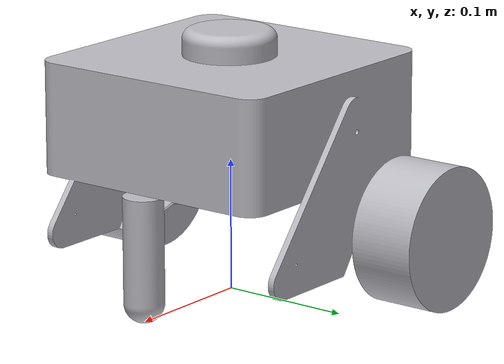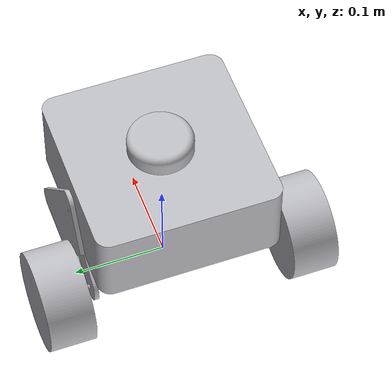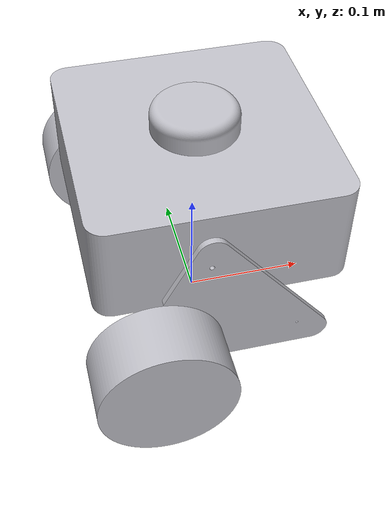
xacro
<?xml version="1.0" ?>
<robot name="walle" xmlns:xacro="http://www.ros.org/wiki/xacro">

<xacro:include filename="$(find walle_description)/urdf/materials.xacro" />
<xacro:include filename="$(find walle_description)/urdf/walle.ros2control" />
<xacro:include filename="$(find walle_description)/urdf/walle.gazebo" />
<link name="base_link">
  <inertial>
    <origin xyz="0.11032812925913082 0.16143345897542147 0.1194833264776962" rpy="0 0 0"/>
    <mass value="4.791704659790887"/>
    <inertia ixx="0.036131" iyy="0.02501" izz="0.044487" ixy="0.0" iyz="5e-06" ixz="-5.5e-05"/>
  </inertial>
  <visual>
    <origin xyz="0 0 0" rpy="0 0 0"/>
    <geometry>
      <mesh filename="file://$(find walle_description)/meshes/base_link.stl" scale="0.001 0.001 0.001"/>
    </geometry>
    <material name="silver"/>
  </visual>
  <collision>
    <origin xyz="0 0 0" rpy="0 0 0"/>
    <geometry>
      <mesh filename="file://$(find walle_description)/meshes/base_link.stl" scale="0.001 0.001 0.001"/>
    </geometry>
  </collision>
</link>

<link name="left_wheel_1">
  <inertial>
    <origin xyz="3.19240895607642e-07 0.025000458514719714 1.8088619061634725e-07" rpy="0 0 0"/>
    <mass value="3.5956470398131257"/>
    <inertia ixx="0.00337" iyy="0.005242" izz="0.00337" ixy="-0.0" iyz="0.0" ixz="0.0"/>
  </inertial>
  <visual>
    <origin xyz="-0.055171 -0.2712 -0.054001" rpy="0 0 0"/>
    <geometry>
      <mesh filename="file://$(find walle_description)/meshes/left_wheel_1.stl" scale="0.001 0.001 0.001"/>
    </geometry>
    <material name="silver"/>
  </visual>
  <collision>
    <origin xyz="-0.055171 -0.2712 -0.054001" rpy="0 0 0"/>
    <geometry>
      <mesh filename="file://$(find walle_description)/meshes/left_wheel_1.stl" scale="0.001 0.001 0.001"/>
    </geometry>
  </collision>
</link>

<link name="right_wheel_1">
  <inertial>
    <origin xyz="3.1924089567009206e-07 -0.02500022053398937 1.8088619049144716e-07" rpy="0 0 0"/>
    <mass value="3.5956470398131253"/>
    <inertia ixx="0.00337" iyy="0.005242" izz="0.00337" ixy="0.0" iyz="0.0" ixz="0.0"/>
  </inertial>
  <visual>
    <origin xyz="-0.055171 -0.051801 -0.054001" rpy="0 0 0"/>
    <geometry>
      <mesh filename="file://$(find walle_description)/meshes/right_wheel_1.stl" scale="0.001 0.001 0.001"/>
    </geometry>
    <material name="silver"/>
  </visual>
  <collision>
    <origin xyz="-0.055171 -0.051801 -0.054001" rpy="0 0 0"/>
    <geometry>
      <mesh filename="file://$(find walle_description)/meshes/right_wheel_1.stl" scale="0.001 0.001 0.001"/>
    </geometry>
  </collision>
</link>

<link name="caster_wheel_1">
  <inertial>
    <origin xyz="-8.696423534071407e-08 -2.8085090747476116e-07 -0.04496975521572785" rpy="0 0 0"/>
    <mass value="0.4982856545913868"/>
    <inertia ixx="0.000365" iyy="0.000365" izz="5.5e-05" ixy="-0.0" iyz="0.0" ixz="-0.0"/>
  </inertial>
  <visual>
    <origin xyz="-0.212168 -0.16141 -0.094797" rpy="0 0 0"/>
    <geometry>
      <mesh filename="file://$(find walle_description)/meshes/caster_wheel_1.stl" scale="0.001 0.001 0.001"/>
    </geometry>
    <material name="silver"/>
  </visual>
  <collision>
    <origin xyz="-0.212168 -0.16141 -0.094797" rpy="0 0 0"/>
    <geometry>
      <mesh filename="file://$(find walle_description)/meshes/caster_wheel_1.stl" scale="0.001 0.001 0.001"/>
    </geometry>
  </collision>
</link>

<link name="lidar_1">
  <inertial>
    <origin xyz="-8.696423536846964e-08 -2.808509075580279e-07 0.009718373123905832" rpy="0 0 0"/>
    <mass value="0.5843654094095093"/>
    <inertia ixx="0.000193" iyy="0.000193" izz="0.000348" ixy="-0.0" iyz="0.0" ixz="-0.0"/>
  </inertial>
  <visual>
    <origin xyz="-0.112168 -0.16141 -0.179797" rpy="0 0 0"/>
    <geometry>
      <mesh filename="file://$(find walle_description)/meshes/lidar_1.stl" scale="0.001 0.001 0.001"/>
    </geometry>
    <material name="silver"/>
  </visual>
  <collision>
    <origin xyz="-0.112168 -0.16141 -0.179797" rpy="0 0 0"/>
    <geometry>
      <mesh filename="file://$(find walle_description)/meshes/lidar_1.stl" scale="0.001 0.001 0.001"/>
    </geometry>
  </collision>
</link>

<link name="imu_1">
  <inertial>
    <origin xyz="-8.696423535459186e-08 -3.511515006549004e-08 -0.0024998122926913197" rpy="0 0 0"/>
    <mass value="0.007290803052000012"/>
    <inertia ixx="0.0" iyy="0.0" izz="0.0" ixy="-0.0" iyz="0.0" ixz="0.0"/>
  </inertial>
  <visual>
    <origin xyz="-0.089668 -0.161242 -0.089797" rpy="0 0 0"/>
    <geometry>
      <mesh filename="file://$(find walle_description)/meshes/imu_1.stl" scale="0.001 0.001 0.001"/>
    </geometry>
    <material name="silver"/>
  </visual>
  <collision>
    <origin xyz="-0.089668 -0.161242 -0.089797" rpy="0 0 0"/>
    <geometry>
      <mesh filename="file://$(find walle_description)/meshes/imu_1.stl" scale="0.001 0.001 0.001"/>
    </geometry>
  </collision>
</link>

<joint name="left_wheel_joint" type="continuous">
  <origin xyz="0.055171 0.2712 0.054001" rpy="0 0 0"/>
  <parent link="base_link"/>
  <child link="left_wheel_1"/>
  <axis xyz="0.0 1.0 0.0"/>
</joint>

<joint name="right_wheel_joint" type="continuous">
  <origin xyz="0.055171 0.051801 0.054001" rpy="0 0 0"/>
  <parent link="base_link"/>
  <child link="right_wheel_1"/>
  <axis xyz="0.0 -1.0 0.0"/>
</joint>

<joint name="caster_wheel_joint" type="fixed">
  <origin xyz="0.212168 0.16141 0.094797" rpy="0 0 0"/>
  <parent link="base_link"/>
  <child link="caster_wheel_1"/>
</joint>

<joint name="lidar_joint" type="fixed">
  <origin xyz="0.112168 0.16141 0.179797" rpy="0 0 0"/>
  <parent link="base_link"/>
  <child link="lidar_1"/>
</joint>

<joint name="imu_joint" type="fixed">
  <origin xyz="0.089668 0.161242 0.089797" rpy="0 0 0"/>
  <parent link="base_link"/>
  <child link="imu_1"/>
</joint>

</robot>

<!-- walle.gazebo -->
<robot name="walle" xmlns:xacro="http://www.ros.org/wiki/xacro" >

<xacro:property name="body_color" value="Gazebo/Silver" />

<gazebo reference="base_link">
  <material>${body_color}</material>
  <mu1>0.2</mu1>
  <mu2>0.2</mu2>
  <self_collide>true</self_collide>
  <gravity>true</gravity>
</gazebo>

<gazebo reference="left_wheel_1">
  <material>${body_color}</material>
  <mu1>0.2</mu1>
  <mu2>0.2</mu2>
  <self_collide>true</self_collide>
</gazebo>

<gazebo reference="right_wheel_1">
  <material>${body_color}</material>
  <mu1>0.2</mu1>
  <mu2>0.2</mu2>
  <self_collide>true</self_collide>
</gazebo>

<gazebo reference="caster_wheel_1">
  <material>${body_color}</material>
  <mu1>0.2</mu1>
  <mu2>0.2</mu2>
  <self_collide>true</self_collide>
</gazebo>

<gazebo reference="lidar_1">
  <material>${body_color}</material>
  <mu1>0.2</mu1>
  <mu2>0.2</mu2>
  <self_collide>true</self_collide>
</gazebo>

<gazebo reference="imu_1">
  <material>${body_color}</material>
  <mu1>0.2</mu1>
  <mu2>0.2</mu2>
  <self_collide>true</self_collide>
</gazebo>

</robot>
